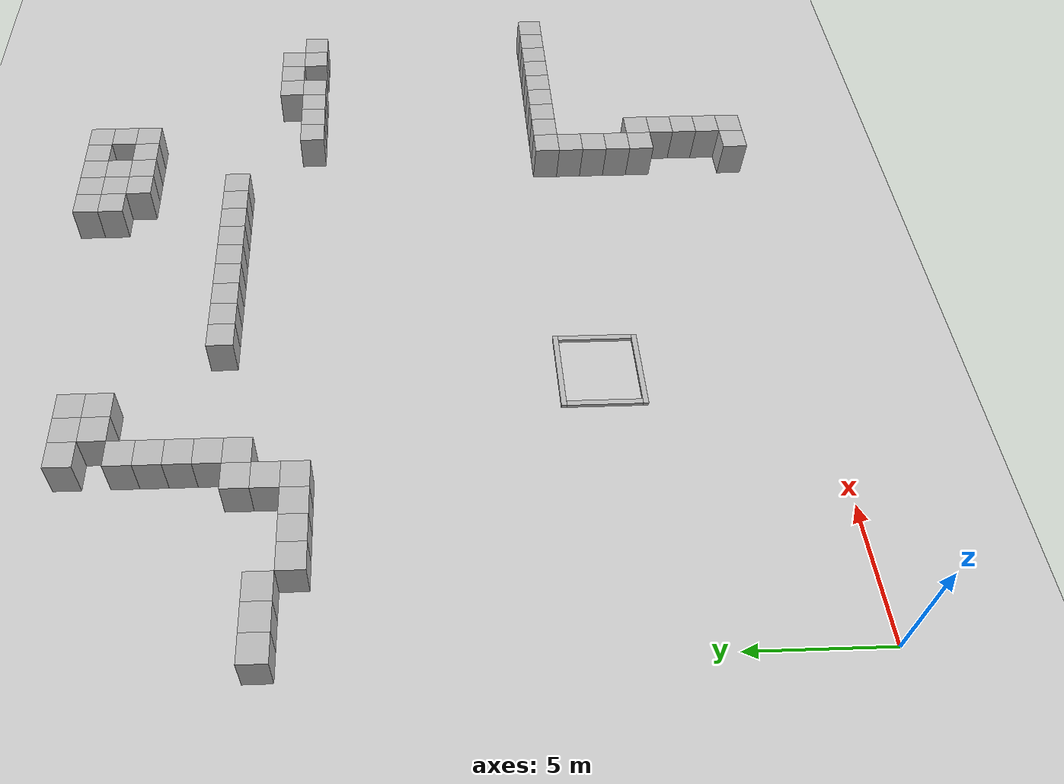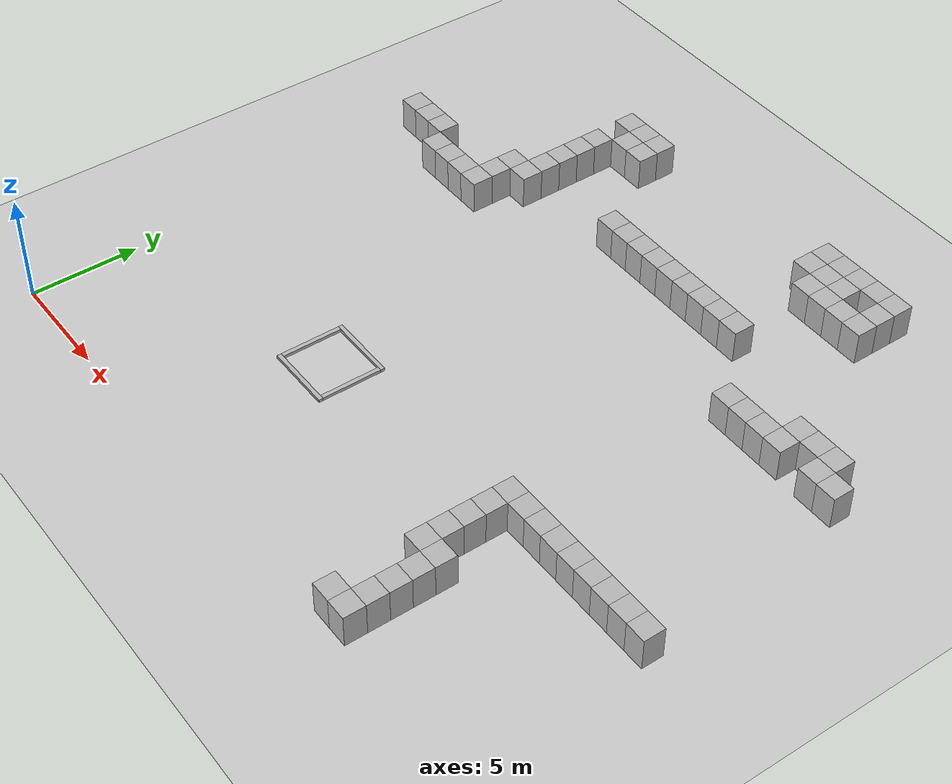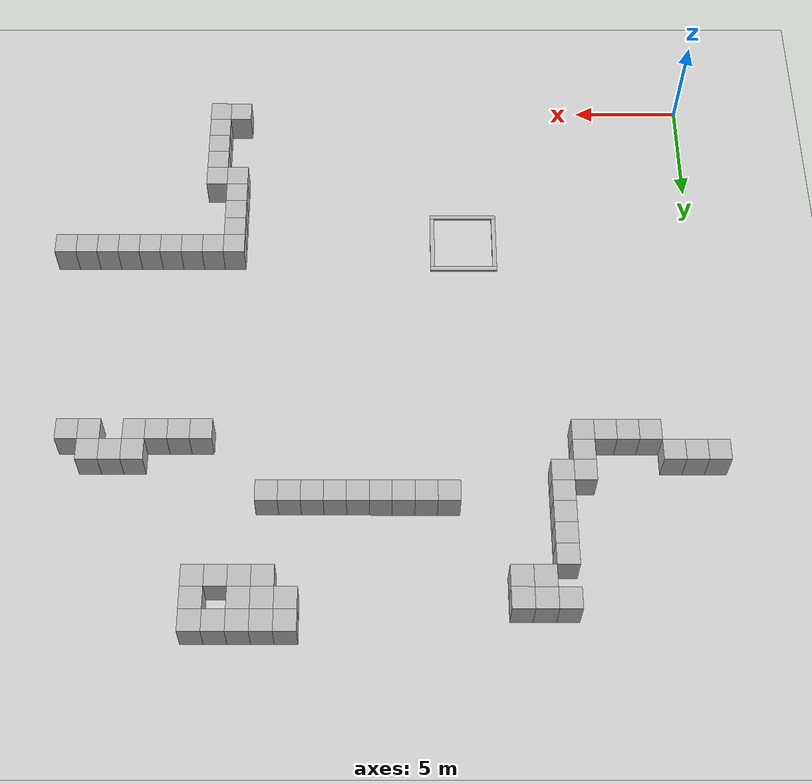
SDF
<sdf version="1.6">
 <world name="default">
  <model name="ground_plane">
   <static>1</static>
   <link name="link">
    <collision name="collision">
     <geometry><plane><normal>0 0 1</normal><size>100 100</size></plane></geometry>
     <surface><friction><ode><mu>100</mu><mu2>50</mu2></ode></friction></surface>
    </collision>
    <visual name="visual">
     <cast_shadows>0</cast_shadows>
     <geometry><plane><normal>0 0 1</normal><size>100 100</size></plane></geometry>
     <material>
      <script><uri>file://media/materials/scripts/gazebo.material</uri><name>Gazebo/Grey</name></script>
     </material>
    </visual>
   </link>
  </model>
  <light name="sun" type="directional">
   <pose>0 0 10 0 -0 0</pose>
   <diffuse>0.8 0.8 0.8 1</diffuse>
   <specular>0.2 0.2 0.2 1</specular>
   <attenuation>
    <range>1000</range>
    <constant>0.9</constant>
    <linear>0.01</linear>
    <quadratic>0.001</quadratic>
   </attenuation>
   <direction>-0.5 0.1 -0.9</direction>
  </light>
  <plugin name="ros_interface_plugin" filename="librotors_gazebo_ros_interface_plugin.so"/>
  <plugin name="ros_link_attacher_plugin" filename="libgazebo_ros_link_attacher.so"/>
  <spherical_coordinates>
   <surface_model>EARTH_WGS84</surface_model>
   <latitude_deg>47.3667</latitude_deg>
   <longitude_deg>8.55</longitude_deg>
   <elevation>500</elevation>
   <heading_deg>0</heading_deg>
  </spherical_coordinates>
  <physics name="default_physics" default="0" type="ode">
   <ode>
    <solver>
     <type>quick</type>
     <iters>1000</iters>
     <sor>1.3</sor>
     <use_dynamic_moi_rescaling>0</use_dynamic_moi_rescaling>
    </solver>
    <constraints>
     <cfm>0</cfm>
     <erp>0.2</erp>
     <contact_max_correcting_vel>100</contact_max_correcting_vel>
     <contact_surface_layer>0.001</contact_surface_layer>
    </constraints>
   </ode>
   <max_step_size>0.01</max_step_size>
   <real_time_factor>1</real_time_factor>
   <real_time_update_rate>100</real_time_update_rate>
  </physics>
  <model name="box_fornt">
   <static>1</static>
   <pose>11 9.5 0 0 -0 0</pose>
   <link name="link">
    <visual name="visual"><geometry><box><size>3.2 0.2 0.2</size></box></geometry></visual>
   </link>
  </model>
  <model name="box_back">
   <static>1</static>
   <pose>11 6.5 0 0 -0 0</pose>
   <link name="link">
    <visual name="visual"><geometry><box><size>3.2 0.2 0.2</size></box></geometry></visual>
   </link>
  </model>
  <model name="box_left">
   <static>1</static>
   <pose>9.5 8 0 0 -0 0</pose>
   <link name="link">
    <visual name="visual"><geometry><box><size>0.2 2.8 0.2</size></box></geometry></visual>
   </link>
  </model>
  <model name="box_right">
   <static>1</static>
   <pose>12.5 8 0 0 -0 0</pose>
   <link name="link">
    <visual name="visual"><geometry><box><size>0.2 2.8 0.2</size></box></geometry></visual>
   </link>
  </model>
  <model name="box_20">
   <static>1</static>
   <pose>0 20 0 0 -0 0</pose>
   <link name="link"><visual name="visual"><geometry><box><size>1 1 3</size></box></geometry></visual></link>
  </model>
  <model name="box_120">
   <static>1</static>
   <pose>1 20 0 0 -0 0</pose>
   <link name="link"><visual name="visual"><geometry><box><size>1 1 3</size></box></geometry></visual></link>
  </model>
  <model name="box_220">
   <static>1</static>
   <pose>2 20 0 0 -0 0</pose>
   <link name="link"><visual name="visual"><geometry><box><size>1 1 3</size></box></geometry></visual></link>
  </model>
  <model name="box_319">
   <static>1</static>
   <pose>3 19 0 0 -0 0</pose>
   <link name="link"><visual name="visual"><geometry><box><size>1 1 3</size></box></geometry></visual></link>
  </model>
  <model name="box_419">
   <static>1</static>
   <pose>4 19 0 0 -0 0</pose>
   <link name="link"><visual name="visual"><geometry><box><size>1 1 3</size></box></geometry></visual></link>
  </model>
  <model name="box_519">
   <static>1</static>
   <pose>5 19 0 0 -0 0</pose>
   <link name="link"><visual name="visual"><geometry><box><size>1 1 3</size></box></geometry></visual></link>
  </model>
  <model name="box_619">
   <static>1</static>
   <pose>6 19 0 0 -0 0</pose>
   <link name="link"><visual name="visual"><geometry><box><size>1 1 3</size></box></geometry></visual></link>
  </model>
  <model name="box_620">
   <static>1</static>
   <pose>6 20 0 0 -0 0</pose>
   <link name="link"><visual name="visual"><geometry><box><size>1 1 3</size></box></geometry></visual></link>
  </model>
  <model name="box_621">
   <static>1</static>
   <pose>6 21 0 0 -0 0</pose>
   <link name="link"><visual name="visual"><geometry><box><size>1 1 3</size></box></geometry></visual></link>
  </model>
  <model name="box_721">
   <static>1</static>
   <pose>7 21 0 0 -0 0</pose>
   <link name="link"><visual name="visual"><geometry><box><size>1 1 3</size></box></geometry></visual></link>
  </model>
  <model name="box_722">
   <static>1</static>
   <pose>7 22 0 0 -0 0</pose>
   <link name="link"><visual name="visual"><geometry><box><size>1 1 3</size></box></geometry></visual></link>
  </model>
  <model name="box_723">
   <static>1</static>
   <pose>7 23 0 0 -0 0</pose>
   <link name="link"><visual name="visual"><geometry><box><size>1 1 3</size></box></geometry></visual></link>
  </model>
  <model name="box_724">
   <static>1</static>
   <pose>7 24 0 0 -0 0</pose>
   <link name="link"><visual name="visual"><geometry><box><size>1 1 3</size></box></geometry></visual></link>
  </model>
  <model name="box_725">
   <static>1</static>
   <pose>7 25 0 0 -0 0</pose>
   <link name="link"><visual name="visual"><geometry><box><size>1 1 3</size></box></geometry></visual></link>
  </model>
  <model name="box_727">
   <static>1</static>
   <pose>7 27 0 0 -0 0</pose>
   <link name="link"><visual name="visual"><geometry><box><size>1 1 3</size></box></geometry></visual></link>
  </model>
  <model name="box_826">
   <static>1</static>
   <pose>8 26 0 0 -0 0</pose>
   <link name="link"><visual name="visual"><geometry><box><size>1 1 3</size></box></geometry></visual></link>
  </model>
  <model name="box_827">
   <static>1</static>
   <pose>8 27 0 0 -0 0</pose>
   <link name="link"><visual name="visual"><geometry><box><size>1 1 3</size></box></geometry></visual></link>
  </model>
  <model name="box_926">
   <static>1</static>
   <pose>9 26 0 0 -0 0</pose>
   <link name="link"><visual name="visual"><geometry><box><size>1 1 3</size></box></geometry></visual></link>
  </model>
  <model name="box_927">
   <static>1</static>
   <pose>9 27 0 0 -0 0</pose>
   <link name="link"><visual name="visual"><geometry><box><size>1 1 3</size></box></geometry></visual></link>
  </model>
  <model name="box_1222">
   <static>1</static>
   <pose>12 22 0 0 -0 0</pose>
   <link name="link"><visual name="visual"><geometry><box><size>1 1 3</size></box></geometry></visual></link>
  </model>
  <model name="box_1322">
   <static>1</static>
   <pose>13 22 0 0 -0 0</pose>
   <link name="link"><visual name="visual"><geometry><box><size>1 1 3</size></box></geometry></visual></link>
  </model>
  <model name="box_1422">
   <static>1</static>
   <pose>14 22 0 0 -0 0</pose>
   <link name="link"><visual name="visual"><geometry><box><size>1 1 3</size></box></geometry></visual></link>
  </model>
  <model name="box_1522">
   <static>1</static>
   <pose>15 22 0 0 -0 0</pose>
   <link name="link"><visual name="visual"><geometry><box><size>1 1 3</size></box></geometry></visual></link>
  </model>
  <model name="box_1622">
   <static>1</static>
   <pose>16 22 0 0 -0 0</pose>
   <link name="link"><visual name="visual"><geometry><box><size>1 1 3</size></box></geometry></visual></link>
  </model>
  <model name="box_1722">
   <static>1</static>
   <pose>17 22 0 0 -0 0</pose>
   <link name="link"><visual name="visual"><geometry><box><size>1 1 3</size></box></geometry></visual></link>
  </model>
  <model name="box_1822">
   <static>1</static>
   <pose>18 22 0 0 -0 0</pose>
   <link name="link"><visual name="visual"><geometry><box><size>1 1 3</size></box></geometry></visual></link>
  </model>
  <model name="box_1922">
   <static>1</static>
   <pose>19 22 0 0 -0 0</pose>
   <link name="link"><visual name="visual"><geometry><box><size>1 1 3</size></box></geometry></visual></link>
  </model>
  <model name="box_1927">
   <static>1</static>
   <pose>19 27 0 0 -0 0</pose>
   <link name="link"><visual name="visual"><geometry><box><size>1 1 3</size></box></geometry></visual></link>
  </model>
  <model name="box_1928">
   <static>1</static>
   <pose>19 28 0 0 -0 0</pose>
   <link name="link"><visual name="visual"><geometry><box><size>1 1 3</size></box></geometry></visual></link>
  </model>
  <model name="box_2022">
   <static>1</static>
   <pose>20 22 0 0 -0 0</pose>
   <link name="link"><visual name="visual"><geometry><box><size>1 1 3</size></box></geometry></visual></link>
  </model>
  <model name="box_2026">
   <static>1</static>
   <pose>20 26 0 0 -0 0</pose>
   <link name="link"><visual name="visual"><geometry><box><size>1 1 3</size></box></geometry></visual></link>
  </model>
  <model name="box_2027">
   <static>1</static>
   <pose>20 27 0 0 -0 0</pose>
   <link name="link"><visual name="visual"><geometry><box><size>1 1 3</size></box></geometry></visual></link>
  </model>
  <model name="box_2028">
   <static>1</static>
   <pose>20 28 0 0 -0 0</pose>
   <link name="link"><visual name="visual"><geometry><box><size>1 1 3</size></box></geometry></visual></link>
  </model>
  <model name="box_2126">
   <static>1</static>
   <pose>21 26 0 0 -0 0</pose>
   <link name="link"><visual name="visual"><geometry><box><size>1 1 3</size></box></geometry></visual></link>
  </model>
  <model name="box_2127">
   <static>1</static>
   <pose>21 27 0 0 -0 0</pose>
   <link name="link"><visual name="visual"><geometry><box><size>1 1 3</size></box></geometry></visual></link>
  </model>
  <model name="box_2128">
   <static>1</static>
   <pose>21 28 0 0 -0 0</pose>
   <link name="link"><visual name="visual"><geometry><box><size>1 1 3</size></box></geometry></visual></link>
  </model>
  <model name="box_2201">
   <static>1</static>
   <pose>22 1 0 0 -0 0</pose>
   <link name="link"><visual name="visual"><geometry><box><size>1 1 3</size></box></geometry></visual></link>
  </model>
  <model name="box_2205">
   <static>1</static>
   <pose>22 5 0 0 -0 0</pose>
   <link name="link"><visual name="visual"><geometry><box><size>1 1 3</size></box></geometry></visual></link>
  </model>
  <model name="box_2206">
   <static>1</static>
   <pose>22 6 0 0 -0 0</pose>
   <link name="link"><visual name="visual"><geometry><box><size>1 1 3</size></box></geometry></visual></link>
  </model>
  <model name="box_2207">
   <static>1</static>
   <pose>22 7 0 0 -0 0</pose>
   <link name="link"><visual name="visual"><geometry><box><size>1 1 3</size></box></geometry></visual></link>
  </model>
  <model name="box_2208">
   <static>1</static>
   <pose>22 8 0 0 -0 0</pose>
   <link name="link"><visual name="visual"><geometry><box><size>1 1 3</size></box></geometry></visual></link>
  </model>
  <model name="box_2209">
   <static>1</static>
   <pose>22 9 0 0 -0 0</pose>
   <link name="link"><visual name="visual"><geometry><box><size>1 1 3</size></box></geometry></visual></link>
  </model>
  <model name="box_2226">
   <static>1</static>
   <pose>22 26 0 0 -0 0</pose>
   <link name="link"><visual name="visual"><geometry><box><size>1 1 3</size></box></geometry></visual></link>
  </model>
  <model name="box_2228">
   <static>1</static>
   <pose>22 28 0 0 -0 0</pose>
   <link name="link"><visual name="visual"><geometry><box><size>1 1 3</size></box></geometry></visual></link>
  </model>
  <model name="box_2301">
   <static>1</static>
   <pose>23 1 0 0 -0 0</pose>
   <link name="link"><visual name="visual"><geometry><box><size>1 1 3</size></box></geometry></visual></link>
  </model>
  <model name="box_2302">
   <static>1</static>
   <pose>23 2 0 0 -0 0</pose>
   <link name="link"><visual name="visual"><geometry><box><size>1 1 3</size></box></geometry></visual></link>
  </model>
  <model name="box_2303">
   <static>1</static>
   <pose>23 3 0 0 -0 0</pose>
   <link name="link"><visual name="visual"><geometry><box><size>1 1 3</size></box></geometry></visual></link>
  </model>
  <model name="box_2304">
   <static>1</static>
   <pose>23 4 0 0 -0 0</pose>
   <link name="link"><visual name="visual"><geometry><box><size>1 1 3</size></box></geometry></visual></link>
  </model>
  <model name="box_2305">
   <static>1</static>
   <pose>23 5 0 0 -0 0</pose>
   <link name="link"><visual name="visual"><geometry><box><size>1 1 3</size></box></geometry></visual></link>
  </model>
  <model name="box_2309">
   <static>1</static>
   <pose>23 9 0 0 -0 0</pose>
   <link name="link"><visual name="visual"><geometry><box><size>1 1 3</size></box></geometry></visual></link>
  </model>
  <model name="box_2319">
   <static>1</static>
   <pose>23 19 0 0 -0 0</pose>
   <link name="link"><visual name="visual"><geometry><box><size>1 1 3</size></box></geometry></visual></link>
  </model>
  <model name="box_2326">
   <static>1</static>
   <pose>23 26 0 0 -0 0</pose>
   <link name="link"><visual name="visual"><geometry><box><size>1 1 3</size></box></geometry></visual></link>
  </model>
  <model name="box_2327">
   <static>1</static>
   <pose>23 27 0 0 -0 0</pose>
   <link name="link"><visual name="visual"><geometry><box><size>1 1 3</size></box></geometry></visual></link>
  </model>
  <model name="box_2328">
   <static>1</static>
   <pose>23 28 0 0 -0 0</pose>
   <link name="link"><visual name="visual"><geometry><box><size>1 1 3</size></box></geometry></visual></link>
  </model>
  <model name="box_2409">
   <static>1</static>
   <pose>24 9 0 0 -0 0</pose>
   <link name="link"><visual name="visual"><geometry><box><size>1 1 3</size></box></geometry></visual></link>
  </model>
  <model name="box_2419">
   <static>1</static>
   <pose>24 19 0 0 -0 0</pose>
   <link name="link"><visual name="visual"><geometry><box><size>1 1 3</size></box></geometry></visual></link>
  </model>
  <model name="box_2509">
   <static>1</static>
   <pose>25 9 0 0 -0 0</pose>
   <link name="link"><visual name="visual"><geometry><box><size>1 1 3</size></box></geometry></visual></link>
  </model>
  <model name="box_2519">
   <static>1</static>
   <pose>25 19 0 0 -0 0</pose>
   <link name="link"><visual name="visual"><geometry><box><size>1 1 3</size></box></geometry></visual></link>
  </model>
  <model name="box_2609">
   <static>1</static>
   <pose>26 9 0 0 -0 0</pose>
   <link name="link"><visual name="visual"><geometry><box><size>1 1 3</size></box></geometry></visual></link>
  </model>
  <model name="box_2619">
   <static>1</static>
   <pose>26 19 0 0 -0 0</pose>
   <link name="link"><visual name="visual"><geometry><box><size>1 1 3</size></box></geometry></visual></link>
  </model>
  <model name="box_2620">
   <static>1</static>
   <pose>26 20 0 0 -0 0</pose>
   <link name="link"><visual name="visual"><geometry><box><size>1 1 3</size></box></geometry></visual></link>
  </model>
  <model name="box_2709">
   <static>1</static>
   <pose>27 9 0 0 -0 0</pose>
   <link name="link"><visual name="visual"><geometry><box><size>1 1 3</size></box></geometry></visual></link>
  </model>
  <model name="box_2720">
   <static>1</static>
   <pose>27 20 0 0 -0 0</pose>
   <link name="link"><visual name="visual"><geometry><box><size>1 1 3</size></box></geometry></visual></link>
  </model>
  <model name="box_2809">
   <static>1</static>
   <pose>28 9 0 0 -0 0</pose>
   <link name="link"><visual name="visual"><geometry><box><size>1 1 3</size></box></geometry></visual></link>
  </model>
  <model name="box_2819">
   <static>1</static>
   <pose>28 19 0 0 -0 0</pose>
   <link name="link"><visual name="visual"><geometry><box><size>1 1 3</size></box></geometry></visual></link>
  </model>
  <model name="box_2820">
   <static>1</static>
   <pose>28 20 0 0 -0 0</pose>
   <link name="link"><visual name="visual"><geometry><box><size>1 1 3</size></box></geometry></visual></link>
  </model>
  <model name="box_2909">
   <static>1</static>
   <pose>29 9 0 0 -0 0</pose>
   <link name="link"><visual name="visual"><geometry><box><size>1 1 3</size></box></geometry></visual></link>
  </model>
  <model name="box_2919">
   <static>1</static>
   <pose>29 19 0 0 -0 0</pose>
   <link name="link"><visual name="visual"><geometry><box><size>1 1 3</size></box></geometry></visual></link>
  </model>
  <model name="box_3009">
   <static>1</static>
   <pose>30 9 0 0 -0 0</pose>
   <link name="link"><visual name="visual"><geometry><box><size>1 1 3</size></box></geometry></visual></link>
  </model>
  <gravity>0 0 -9.8</gravity>
  <magnetic_field>6e-06 2.3e-05 -4.2e-05</magnetic_field>
  <atmosphere type="adiabatic"/>
  <scene><ambient>0.4 0.4 0.4 1</ambient><background>0.7 0.7 0.7 1</background><shadows>1</shadows></scene>
 </world>
</sdf>
